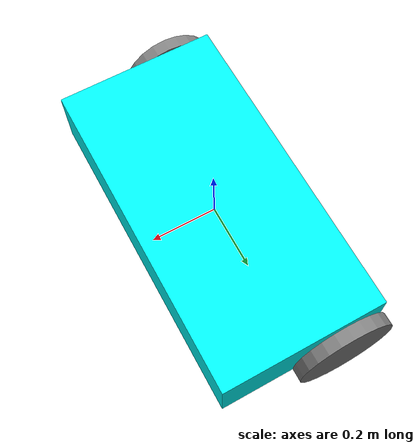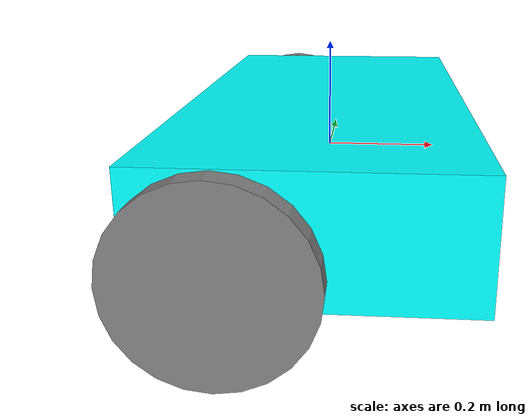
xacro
<?xml version="1.0"?>
<robot name="my_bot" xmlns:xacro="http://ros.org/wiki/xacro">

<!-- Define robot constants -->
  <xacro:property name="base_width" value="1"/>
  <xacro:property name="base_length" value="0.5"/>
  <xacro:property name="base_height" value="0.2"/>
  <xacro:property name="wheel_radius" value="0.15"/>
  <xacro:property name="wheel_caster_radius" value="0.12"/>
  <xacro:property name="wheel_width" value="0.04"/>
  <xacro:property name="wheel_ygap" value="0.025"/>
  <xacro:property name="wheel_zoff" value="0.05"/>
  <xacro:property name="wheel_xoff" value="0.12"/>

  <xacro:property name="caster_xoff" value="0.14"/>

  <xacro:macro name="default_inertial" params="mass">
    <inertial>
            <mass value="${mass}" />
            <inertia ixx="1e-3" ixy="0.0" ixz="0.0"
                 iyy="1e-3" iyz="0.0"
                 izz="1e-3" />
    </inertial>
  </xacro:macro>

<!-- Robot Base -->
  <link name="base_link">
    <visual>
      <geometry>
        <box size="${base_length} ${base_width} ${base_height}"/>
      </geometry>
      <material name="Cyan">
        <color rgba="0 1.0 1.0 1.0"/>
      </material>
    </visual>

<!-- Делаем коллизию -->
    <collision>
      <geometry>
        <box length="${base_length} ${base_width} ${base_height}"/>
      </geometry>
    </collision>
<!-- Создаем массу и инерцию  -->
    <xacro:default_inertial mass="10"/>
  </link>

<!-- След ноги робота -->
  <link name="base_footprint"/>
  <joint name="base_joint" type="fixed">
    <parent link="base_link"/>
    <child link="base_footprint"/>
    <origin xyz="0.0 0.0 ${-(wheel_radius+wheel_zoff)}" rpy="0 0 0"/>
  </joint>

<!-- Колеса -->
  <xacro:macro name="wheel" params="prefix x_reflect y_reflect">
    <link name="${prefix}_link">
      <visual>
        <origin xyz="0 0 0" rpy="${pi/2} 0 0"/>
        <geometry>
            <cylinder radius="${wheel_radius}" length="${wheel_width}"/>
        </geometry>
        <material name="Gray">
          <color rgba="0.5 0.5 0.5 1.0"/>
        </material>
      </visual>
    </link>

    <joint name="${prefix}_joint" type="continuous">
      <parent link="base_link"/>
      <child link="${prefix}_link"/>
      <origin xyz="${x_reflect*wheel_xoff} ${y_reflect*(base_width/2+wheel_ygap)} ${-wheel_zoff}" rpy="0 0 0"/>
      <axis xyz="0 1 0"/>
    </joint>
  </xacro:macro>

  <xacro:wheel prefix="drivewhl_l" x_reflect="-1" y_reflect="1" />
  <xacro:wheel prefix="drivewhl_r" x_reflect="-1" y_reflect="-1" />

<!-- Роликовое колесо -->
  <link name="front_caster">
    <visual>
      <geometry>
        <sphere radius="${(wheel_caster_radius+wheel_zoff-(base_height/2))}"/>
      </geometry>
      <material name="Cyan">
        <color rgba="0 1.0 1.0 1.0"/>
      </material>
    </visual>
  </link>

  <joint name="caster_joint" type="fixed">
    <parent link="base_link"/>
    <child link="front_caster"/>
    <origin xyz="${caster_xoff} 0.0 ${-(base_height/2)}" rpy="0 0 0"/>
  </joint>

</robot>
